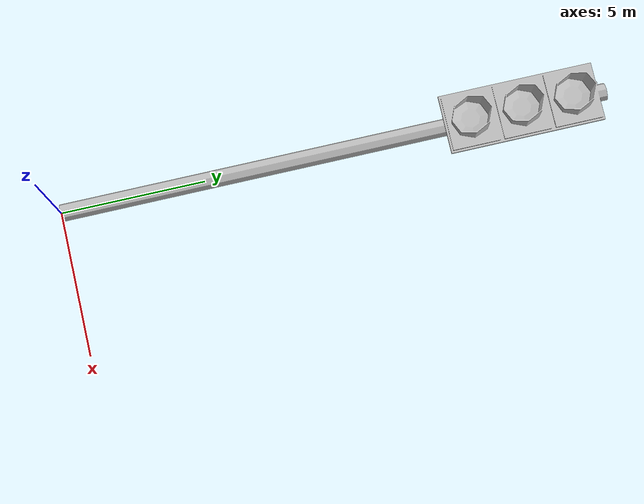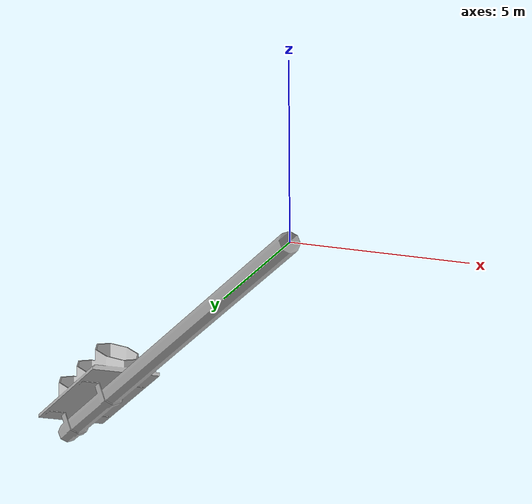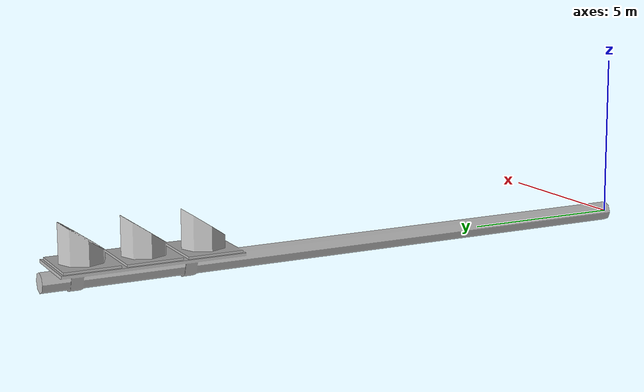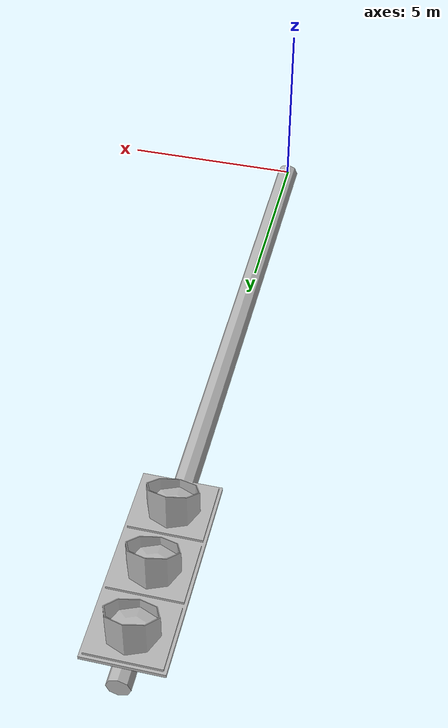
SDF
<?xml version="1.0" ?>
<sdf version="1.6">
  <model name="trafficlight">
    <static>true</static>
    <link name="link">
      <collision name="collision">
        <geometry>
          <mesh>
            <pose>0 0 0 0 0 0</pose>

            <scale>2.7362925425083047 2.7362925425083047 2.7362925425083047</scale>
            <uri>model://trafficlight/meshes/trafficlight.obj</uri>
          </mesh>
        </geometry>
      </collision>
      <visual name="visual">
        <geometry>
          <mesh>
            <pose>0 0 0 0 0 0</pose>
            <scale>2.7362925425083047 2.7362925425083047 2.7362925425083047</scale>

            <uri>model://trafficlight/meshes/trafficlight.obj</uri>
          </mesh>
        </geometry>
      </visual>
    </link>
  </model>
</sdf>
